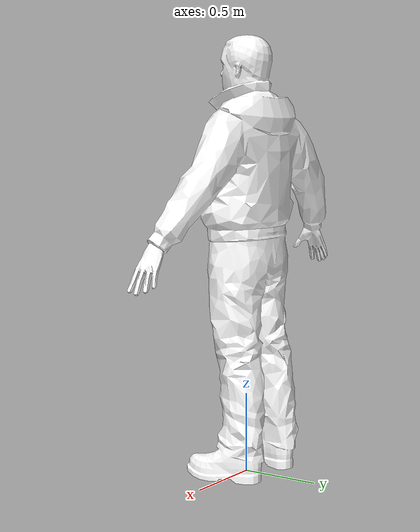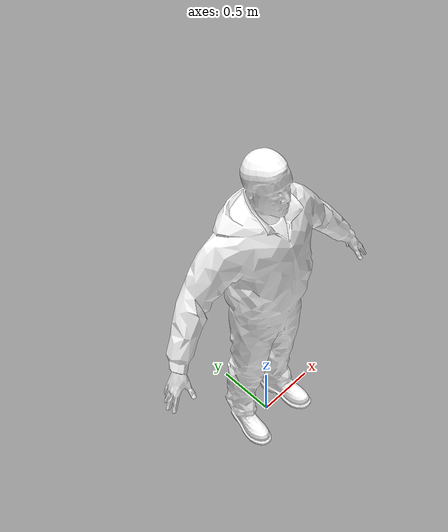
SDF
<?xml version="1.0"?>
<sdf version="1.10">
  <model name="rescue_randy">
    <!-- Set to true if you want it immovable -->
    <static>false</static>

    <link name="link">
      <pose>0 0 0 0 0 0</pose>

      <!-- Collision: use mesh for precise bounds, scaled 1.5x -->
      <collision name="collision">
        <geometry>
          <mesh>
            <uri>model://rescue_randy/meshes/rescue_randy.dae</uri>
            <scale>1.5 1.5 1.5</scale>
          </mesh>
        </geometry>
        <surface>
          <contact>
            <ode/>
          </contact>
          <bounce/>
          <friction>
            <torsional>
              <ode/>
            </torsional>
            <ode/>
          </friction>
        </surface>
      </collision>

      <!-- Visual: mesh with PBR textures, scaled 1.5x -->
      <visual name="visual">
        <geometry>
          <mesh>
            <uri>model://rescue_randy/meshes/rescue_randy.dae</uri>
            <scale>1.5 1.5 1.5</scale>
          </mesh>
        </geometry>
        <material>
          <!-- Base coloring to ensure visibility -->
          <ambient>1 1 1 1</ambient>
          <diffuse>1 1 1 1</diffuse>
          <pbr>
            <metal>
              <!-- Albedo/diffuse map -->
              <albedo_map>file://model://rescue_randy/materials/textures/rescue_randy_albedo.png</albedo_map>
              <!-- Normal map -->
              <normal_map>file://model://rescue_randy/materials/textures/rescue_randy_normal.png</normal_map>
              <!-- Roughness map -->
              <roughness_map>file://model://rescue_randy/materials/textures/rescue_randy_roughness.png</roughness_map>
              <!-- Metalness map -->
              <metalness_map>file://model://rescue_randy/materials/textures/rescue_randy_metalness.png</metalness_map>
              <roughness>0.8</roughness>
              <metalness>0.1</metalness>
            </metal>
          </pbr>
        </material>
      </visual>
    </link>
  </model>
</sdf>
